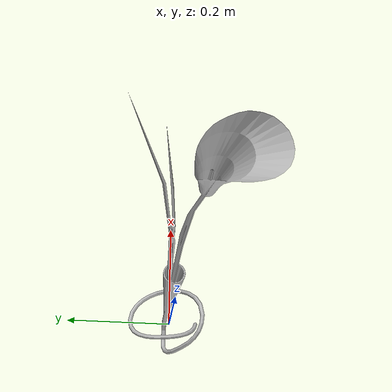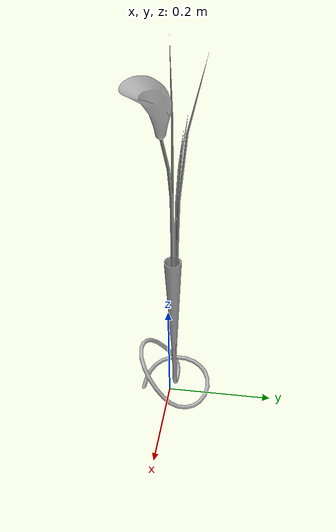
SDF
<?xml version='1.0'?>
<sdf version='1.4'>
  <model name='s__1802'>
    <pose>0 0 0 0 0 0</pose>
    <static>true</static>
    <link name='link'>
      <collision name='collision'>
        <pose>0 0 0 0 0 0</pose>
        <geometry>
          <box>
            <size>0.13 0.16 2</size>
          </box>
        </geometry>
      </collision>
      <visual name='visual'>
        <pose>0 0 0 0 0 0</pose>
        <geometry>
          <mesh><uri>model://s__1802/s__1802.dae</uri></mesh>
        </geometry>
      </visual>
    </link>
  </model>
</sdf>
